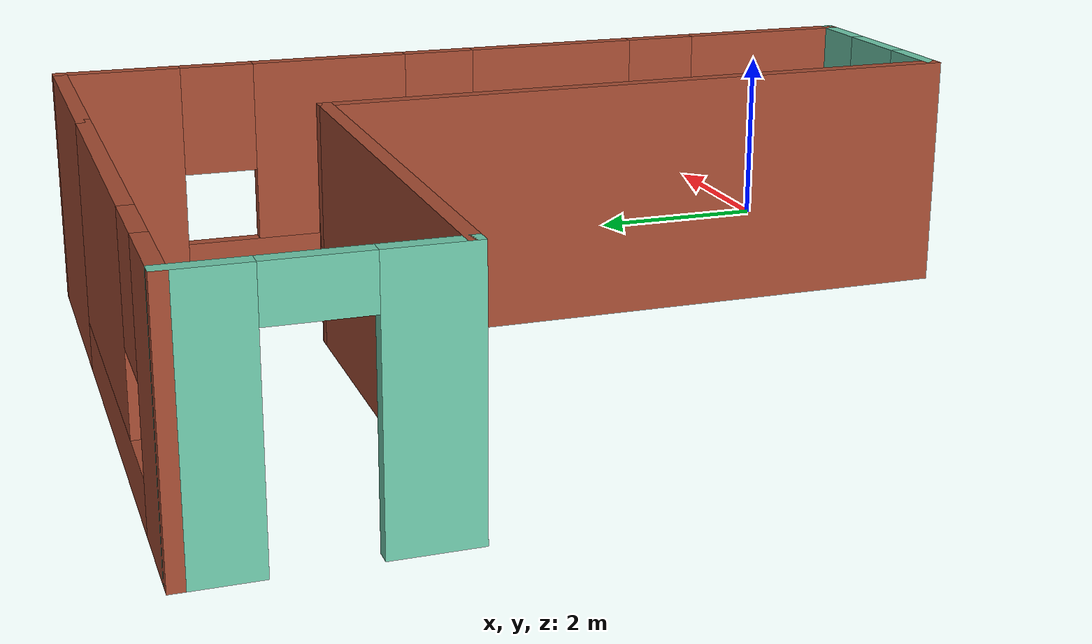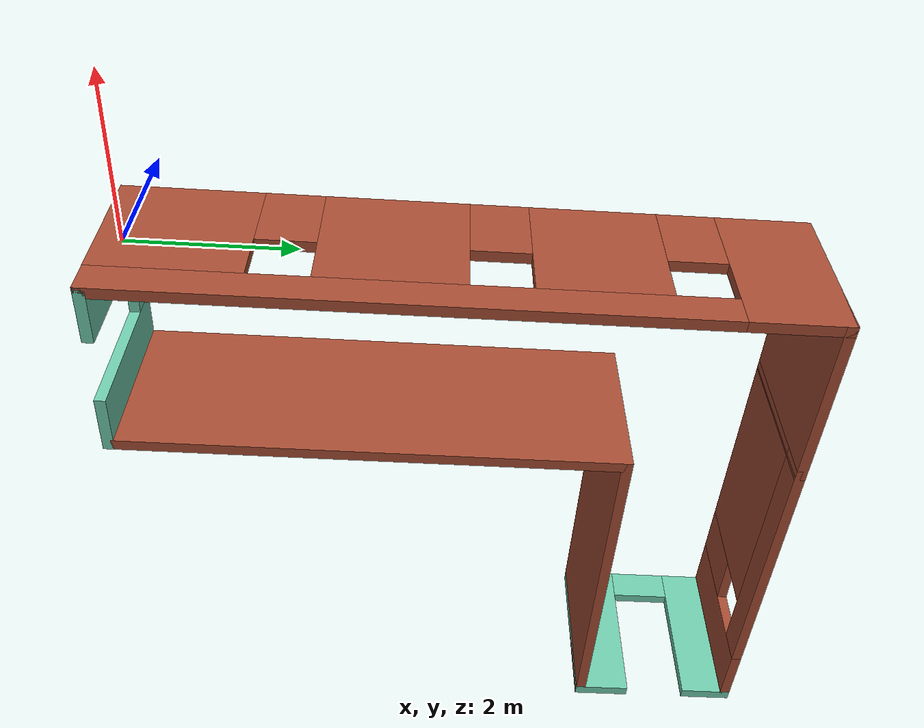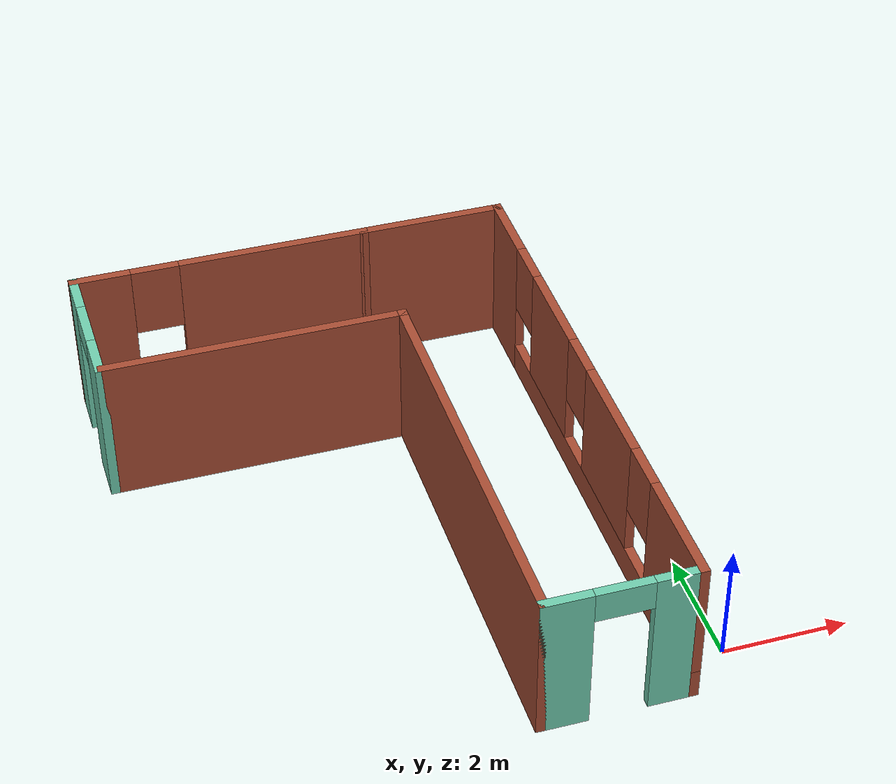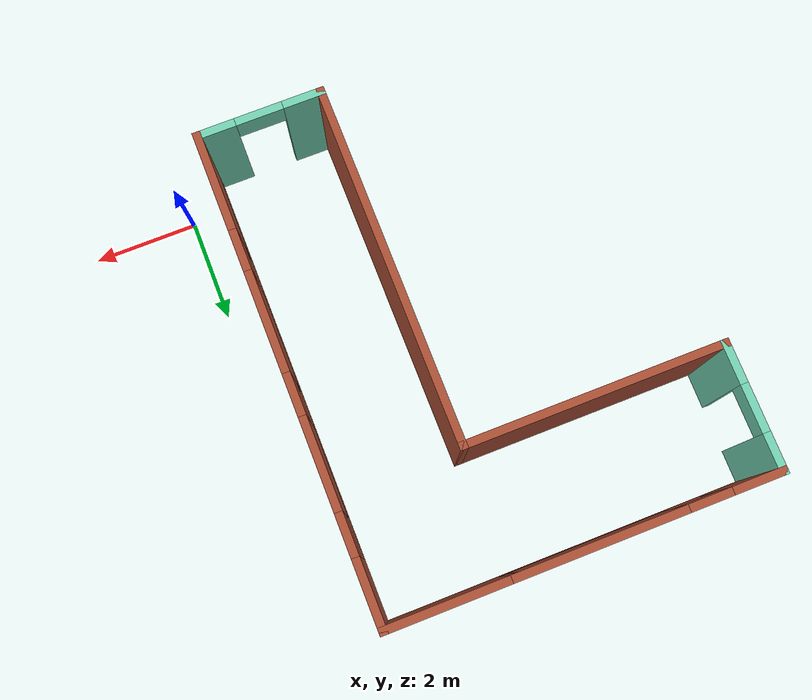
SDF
<?xml version='1.0'?>
<sdf version='1.6'>
  <model name='building'>
    <pose frame=''>-4.34708 3.97894 0 0 -0 0</pose>
    <link name='Wall_13'>
      <pose frame=''>-3.59992 3.42506 0 0 0 -1.5708</pose>
      <visual name='Wall_13_Visual_0'>
        <pose frame=''>-0.864263 0 1.25 0 -0 0</pose>
        <geometry>
          <box>
            <size>0.771473 0.15 2.5</size>
          </box>
        </geometry>
        <material>
          <script>
            <uri>file://media/materials/scripts/gazebo.material</uri>
            <name>Gazebo/Grey</name>
          </script>
          <ambient>0.435294 0.796078 0.67451 1</ambient>
        </material>
        <meta>
          <layer>0</layer>
        </meta>
      </visual>
      <collision name='Wall_13_Collision_0'>
        <geometry>
          <box>
            <size>0.771473 0.15 2.5</size>
          </box>
        </geometry>
        <pose frame=''>-0.864263 0 1.25 0 -0 0</pose>
      </collision>
      <visual name='Wall_13_Visual_1'>
        <pose frame=''>0.835737 0 1.25 0 -0 0</pose>
        <geometry>
          <box>
            <size>0.828527 0.15 2.5</size>
          </box>
        </geometry>
        <material>
          <script>
            <uri>file://media/materials/scripts/gazebo.material</uri>
            <name>Gazebo/Grey</name>
          </script>
          <ambient>0.435294 0.796078 0.67451 1</ambient>
        </material>
        <meta>
          <layer>0</layer>
        </meta>
      </visual>
      <collision name='Wall_13_Collision_1'>
        <geometry>
          <box>
            <size>0.828527 0.15 2.5</size>
          </box>
        </geometry>
        <pose frame=''>0.835737 0 1.25 0 -0 0</pose>
      </collision>
      <visual name='Wall_13_Visual_2'>
        <pose frame=''>-0.028527 0 2.25 0 -0 0</pose>
        <geometry>
          <box>
            <size>0.9 0.15 0.5</size>
          </box>
        </geometry>
        <material>
          <script>
            <uri>file://media/materials/scripts/gazebo.material</uri>
            <name>Gazebo/Grey</name>
          </script>
          <ambient>0.435294 0.796078 0.67451 1</ambient>
        </material>
        <meta>
          <layer>0</layer>
        </meta>
      </visual>
      <collision name='Wall_13_Collision_2'>
        <geometry>
          <box>
            <size>0.9 0.15 0.5</size>
          </box>
        </geometry>
        <pose frame=''>-0.028527 0 2.25 0 -0 0</pose>
      </collision>
    </link>
    <link name='Wall_14'>
      <collision name='Wall_14_Collision'>
        <geometry>
          <box>
            <size>5 0.15 2.5</size>
          </box>
        </geometry>
        <pose frame=''>0 0 1.25 0 -0 0</pose>
      </collision>
      <visual name='Wall_14_Visual'>
        <pose frame=''>0 0 1.25 0 -0 0</pose>
        <geometry>
          <box>
            <size>5 0.15 2.5</size>
          </box>
        </geometry>
        <material>
          <script>
            <uri>file://media/materials/scripts/gazebo.material</uri>
            <name>Gazebo/Bricks</name>
          </script>
          <ambient>1 1 1 1</ambient>
        </material>
        <meta>
          <layer>0</layer>
        </meta>
      </visual>
      <pose frame=''>-1.17491 2.25006 0 0 -0 0</pose>
    </link>
    <link name='Wall_16'>
      <pose frame=''>-1.17508 4.59994 0 0 0 -5e-05</pose>
      <visual name='Wall_16_Visual_0'>
        <pose frame=''>-1.99871 0 1.25 0 -0 0</pose>
        <geometry>
          <box>
            <size>1.00257 0.15 2.5</size>
          </box>
        </geometry>
        <material>
          <script>
            <uri>file://media/materials/scripts/gazebo.material</uri>
            <name>Gazebo/Bricks</name>
          </script>
          <ambient>1 1 1 1</ambient>
        </material>
        <meta>
          <layer>0</layer>
        </meta>
      </visual>
      <collision name='Wall_16_Collision_0'>
        <geometry>
          <box>
            <size>1.00257 0.15 2.5</size>
          </box>
        </geometry>
        <pose frame=''>-1.99871 0 1.25 0 -0 0</pose>
      </collision>
      <visual name='Wall_16_Visual_1'>
        <pose frame=''>0.501286 0 0.25 0 -0 0</pose>
        <geometry>
          <box>
            <size>3.99743 0.15 0.5</size>
          </box>
        </geometry>
        <material>
          <script>
            <uri>file://media/materials/scripts/gazebo.material</uri>
            <name>Gazebo/Bricks</name>
          </script>
          <ambient>1 1 1 1</ambient>
        </material>
        <meta>
          <layer>0</layer>
        </meta>
      </visual>
      <collision name='Wall_16_Collision_1'>
        <geometry>
          <box>
            <size>3.99743 0.15 0.5</size>
          </box>
        </geometry>
        <pose frame=''>0.501286 0 0.25 0 -0 0</pose>
      </collision>
      <visual name='Wall_16_Visual_2'>
        <pose frame=''>0.901286 0 1.5 0 -0 0</pose>
        <geometry>
          <box>
            <size>3.19743 0.15 2</size>
          </box>
        </geometry>
        <material>
          <script>
            <uri>file://media/materials/scripts/gazebo.material</uri>
            <name>Gazebo/Bricks</name>
          </script>
          <ambient>1 1 1 1</ambient>
        </material>
        <meta>
          <layer>0</layer>
        </meta>
      </visual>
      <collision name='Wall_16_Collision_2'>
        <geometry>
          <box>
            <size>3.19743 0.15 2</size>
          </box>
        </geometry>
        <pose frame=''>0.901286 0 1.5 0 -0 0</pose>
      </collision>
      <visual name='Wall_16_Visual_3'>
        <pose frame=''>-1.09743 0 1.9 0 -0 0</pose>
        <geometry>
          <box>
            <size>0.8 0.15 1.2</size>
          </box>
        </geometry>
        <material>
          <script>
            <uri>file://media/materials/scripts/gazebo.material</uri>
            <name>Gazebo/Bricks</name>
          </script>
          <ambient>1 1 1 1</ambient>
        </material>
        <meta>
          <layer>0</layer>
        </meta>
      </visual>
      <collision name='Wall_16_Collision_3'>
        <geometry>
          <box>
            <size>0.8 0.15 1.2</size>
          </box>
        </geometry>
        <pose frame=''>-1.09743 0 1.9 0 -0 0</pose>
      </collision>
    </link>
    <link name='Wall_18'>
      <collision name='Wall_18_Collision'>
        <geometry>
          <box>
            <size>7 0.15 2.5</size>
          </box>
        </geometry>
        <pose frame=''>0 0 1.25 0 -0 0</pose>
      </collision>
      <visual name='Wall_18_Visual'>
        <pose frame=''>0 0 1.25 0 -0 0</pose>
        <geometry>
          <box>
            <size>7 0.15 2.5</size>
          </box>
        </geometry>
        <material>
          <script>
            <uri>file://media/materials/scripts/gazebo.material</uri>
            <name>Gazebo/Bricks</name>
          </script>
          <ambient>1 1 1 1</ambient>
        </material>
        <meta>
          <layer>0</layer>
        </meta>
      </visual>
      <pose frame=''>1.25008 -1.17494 0 0 0 -1.5708</pose>
    </link>
    <link name='Wall_20'>
      <pose frame=''>2.42508 -4.59994 0 0 -0 0</pose>
      <visual name='Wall_20_Visual_0'>
        <pose frame=''>-0.845464 0 1.25 0 -0 0</pose>
        <geometry>
          <box>
            <size>0.809072 0.15 2.5</size>
          </box>
        </geometry>
        <material>
          <script>
            <uri>file://media/materials/scripts/gazebo.material</uri>
            <name>Gazebo/Grey</name>
          </script>
          <ambient>0.435294 0.796078 0.67451 1</ambient>
        </material>
        <meta>
          <layer>0</layer>
        </meta>
      </visual>
      <collision name='Wall_20_Collision_0'>
        <geometry>
          <box>
            <size>0.809072 0.15 2.5</size>
          </box>
        </geometry>
        <pose frame=''>-0.845464 0 1.25 0 -0 0</pose>
      </collision>
      <visual name='Wall_20_Visual_1'>
        <pose frame=''>0.854536 0 1.25 0 -0 0</pose>
        <geometry>
          <box>
            <size>0.790928 0.15 2.5</size>
          </box>
        </geometry>
        <material>
          <script>
            <uri>file://media/materials/scripts/gazebo.material</uri>
            <name>Gazebo/Grey</name>
          </script>
          <ambient>0.435294 0.796078 0.67451 1</ambient>
        </material>
        <meta>
          <layer>0</layer>
        </meta>
      </visual>
      <collision name='Wall_20_Collision_1'>
        <geometry>
          <box>
            <size>0.790928 0.15 2.5</size>
          </box>
        </geometry>
        <pose frame=''>0.854536 0 1.25 0 -0 0</pose>
      </collision>
      <visual name='Wall_20_Visual_2'>
        <pose frame=''>0.009072 0 2.25 0 -0 0</pose>
        <geometry>
          <box>
            <size>0.9 0.15 0.5</size>
          </box>
        </geometry>
        <material>
          <script>
            <uri>file://media/materials/scripts/gazebo.material</uri>
            <name>Gazebo/Grey</name>
          </script>
          <ambient>0.435294 0.796078 0.67451 1</ambient>
        </material>
        <meta>
          <layer>0</layer>
        </meta>
      </visual>
      <collision name='Wall_20_Collision_2'>
        <geometry>
          <box>
            <size>0.9 0.15 0.5</size>
          </box>
        </geometry>
        <pose frame=''>0.009072 0 2.25 0 -0 0</pose>
      </collision>
    </link>
    <link name='Wall_23'>
      <collision name='Wall_23_Collision'>
        <geometry>
          <box>
            <size>2.5 0.15 2.5</size>
          </box>
        </geometry>
        <pose frame=''>0 0 1.25 0 -0 0</pose>
      </collision>
      <visual name='Wall_23_Visual'>
        <pose frame=''>0 0 1.25 0 -0 0</pose>
        <geometry>
          <box>
            <size>2.5 0.15 2.5</size>
          </box>
        </geometry>
        <material>
          <script>
            <uri>file://media/materials/scripts/gazebo.material</uri>
            <name>Gazebo/Bricks</name>
          </script>
          <ambient>1 1 1 1</ambient>
        </material>
        <meta>
          <layer>0</layer>
        </meta>
      </visual>
      <pose frame=''>2.42475 4.59982 0 0 -0 0</pose>
    </link>
    <link name='Wall_24'>
      <pose frame=''>3.59992 -6.1e-05 0 0 0 -1.57076</pose>
      <visual name='Wall_24_Visual_0'>
        <pose frame=''>-4.00275 0 1.25 0 -0 0</pose>
        <geometry>
          <box>
            <size>1.3445 0.15 2.5</size>
          </box>
        </geometry>
        <material>
          <script>
            <uri>file://media/materials/scripts/gazebo.material</uri>
            <name>Gazebo/Bricks</name>
          </script>
          <ambient>1 1 1 1</ambient>
        </material>
        <meta>
          <layer>0</layer>
        </meta>
      </visual>
      <collision name='Wall_24_Collision_0'>
        <geometry>
          <box>
            <size>1.3445 0.15 2.5</size>
          </box>
        </geometry>
        <pose frame=''>-4.00275 0 1.25 0 -0 0</pose>
      </collision>
      <visual name='Wall_24_Visual_1'>
        <pose frame=''>0.672252 0 0.25 0 -0 0</pose>
        <geometry>
          <box>
            <size>8.0055 0.15 0.5</size>
          </box>
        </geometry>
        <material>
          <script>
            <uri>file://media/materials/scripts/gazebo.material</uri>
            <name>Gazebo/Bricks</name>
          </script>
          <ambient>1 1 1 1</ambient>
        </material>
        <meta>
          <layer>0</layer>
        </meta>
      </visual>
      <collision name='Wall_24_Collision_1'>
        <geometry>
          <box>
            <size>8.0055 0.15 0.5</size>
          </box>
        </geometry>
        <pose frame=''>0.672252 0 0.25 0 -0 0</pose>
      </collision>
      <visual name='Wall_24_Visual_2'>
        <pose frame=''>-1.66338 0 1.5 0 -0 0</pose>
        <geometry>
          <box>
            <size>1.73424 0.15 2</size>
          </box>
        </geometry>
        <material>
          <script>
            <uri>file://media/materials/scripts/gazebo.material</uri>
            <name>Gazebo/Bricks</name>
          </script>
          <ambient>1 1 1 1</ambient>
        </material>
        <meta>
          <layer>0</layer>
        </meta>
      </visual>
      <collision name='Wall_24_Collision_2'>
        <geometry>
          <box>
            <size>1.73424 0.15 2</size>
          </box>
        </geometry>
        <pose frame=''>-1.66338 0 1.5 0 -0 0</pose>
      </collision>
      <visual name='Wall_24_Visual_3'>
        <pose frame=''>0.971434 0 1.5 0 -0 0</pose>
        <geometry>
          <box>
            <size>1.93537 0.15 2</size>
          </box>
        </geometry>
        <material>
          <script>
            <uri>file://media/materials/scripts/gazebo.material</uri>
            <name>Gazebo/Bricks</name>
          </script>
          <ambient>1 1 1 1</ambient>
        </material>
        <meta>
          <layer>0</layer>
        </meta>
      </visual>
      <collision name='Wall_24_Collision_3'>
        <geometry>
          <box>
            <size>1.93537 0.15 2</size>
          </box>
        </geometry>
        <pose frame=''>0.971434 0 1.5 0 -0 0</pose>
      </collision>
      <visual name='Wall_24_Visual_4'>
        <pose frame=''>3.70706 0 1.5 0 -0 0</pose>
        <geometry>
          <box>
            <size>1.93588 0.15 2</size>
          </box>
        </geometry>
        <material>
          <script>
            <uri>file://media/materials/scripts/gazebo.material</uri>
            <name>Gazebo/Bricks</name>
          </script>
          <ambient>1 1 1 1</ambient>
        </material>
        <meta>
          <layer>0</layer>
        </meta>
      </visual>
      <collision name='Wall_24_Collision_4'>
        <geometry>
          <box>
            <size>1.93588 0.15 2</size>
          </box>
        </geometry>
        <pose frame=''>3.70706 0 1.5 0 -0 0</pose>
      </collision>
      <visual name='Wall_24_Visual_5'>
        <pose frame=''>-2.9305 0 1.9 0 -0 0</pose>
        <geometry>
          <box>
            <size>0.8 0.15 1.2</size>
          </box>
        </geometry>
        <material>
          <script>
            <uri>file://media/materials/scripts/gazebo.material</uri>
            <name>Gazebo/Bricks</name>
          </script>
          <ambient>1 1 1 1</ambient>
        </material>
        <meta>
          <layer>0</layer>
        </meta>
      </visual>
      <collision name='Wall_24_Collision_5'>
        <geometry>
          <box>
            <size>0.8 0.15 1.2</size>
          </box>
        </geometry>
        <pose frame=''>-2.9305 0 1.9 0 -0 0</pose>
      </collision>
      <visual name='Wall_24_Visual_6'>
        <pose frame=''>-0.396253 0 1.9 0 -0 0</pose>
        <geometry>
          <box>
            <size>0.8 0.15 1.2</size>
          </box>
        </geometry>
        <material>
          <script>
            <uri>file://media/materials/scripts/gazebo.material</uri>
            <name>Gazebo/Bricks</name>
          </script>
          <ambient>1 1 1 1</ambient>
        </material>
        <meta>
          <layer>0</layer>
        </meta>
      </visual>
      <collision name='Wall_24_Collision_6'>
        <geometry>
          <box>
            <size>0.8 0.15 1.2</size>
          </box>
        </geometry>
        <pose frame=''>-0.396253 0 1.9 0 -0 0</pose>
      </collision>
      <visual name='Wall_24_Visual_7'>
        <pose frame=''>2.33912 0 1.9 0 -0 0</pose>
        <geometry>
          <box>
            <size>0.8 0.15 1.2</size>
          </box>
        </geometry>
        <material>
          <script>
            <uri>file://media/materials/scripts/gazebo.material</uri>
            <name>Gazebo/Bricks</name>
          </script>
          <ambient>1 1 1 1</ambient>
        </material>
        <meta>
          <layer>0</layer>
        </meta>
      </visual>
      <collision name='Wall_24_Collision_7'>
        <geometry>
          <box>
            <size>0.8 0.15 1.2</size>
          </box>
        </geometry>
        <pose frame=''>2.33912 0 1.9 0 -0 0</pose>
      </collision>
    </link>
    <static>1</static>
  </model>
</sdf>
